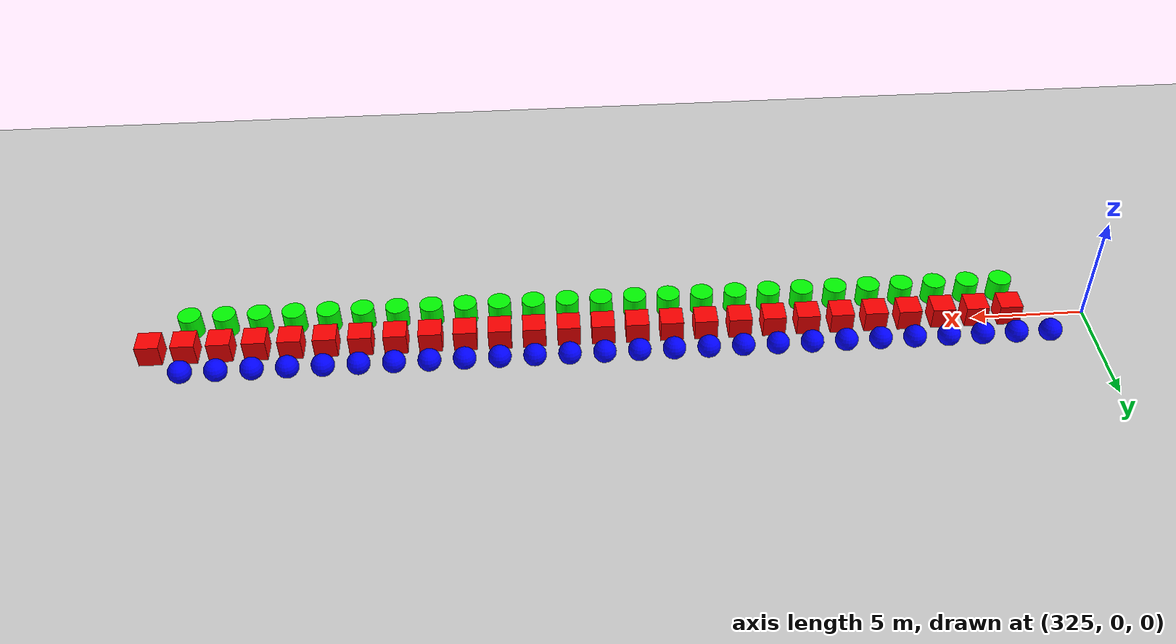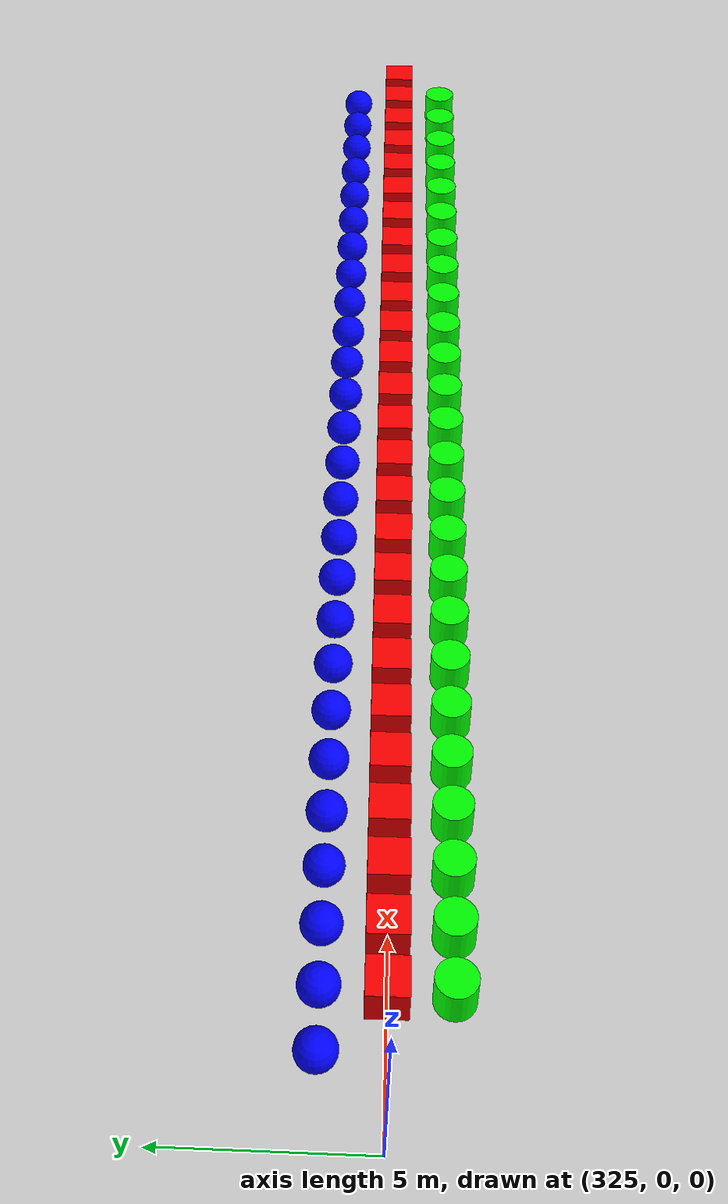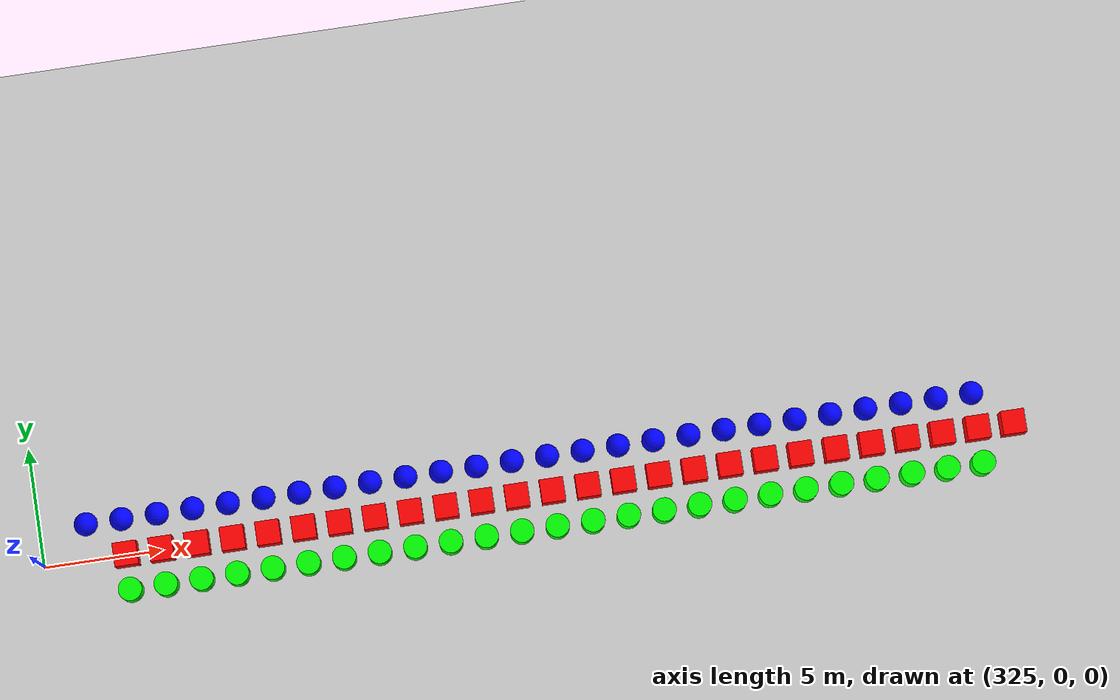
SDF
<sdf version="1.6">
 <world name="shapes">
  <model name="ground_plane">
   <static>true</static>
   <link name="link">
    <collision name="collision">
     <geometry><plane><normal>0 0 1</normal><size>100 100</size></plane></geometry>
    </collision>
    <visual name="visual">
     <geometry><plane><normal>0 0 1</normal><size>100 100</size></plane></geometry>
     <material>
      <ambient>0.8 0.8 0.8 1</ambient>
      <diffuse>0.8 0.8 0.8 1</diffuse>
      <specular>0.8 0.8 0.8 1</specular>
     </material>
    </visual>
   </link>
  </model>
  <model name="sphere_718">
   <static>false</static>
   <pose>327.0 1.5 0.5 0 0 0</pose>
   <link name="sphere_link">
    <inertial>
     <inertia><ixx>3</ixx><ixy>0</ixy><ixz>0</ixz><iyy>3</iyy><iyz>0</iyz><izz>3</izz></inertia>
     <mass>3.0</mass>
    </inertial>
    <collision name="sphere_collision"><geometry><sphere><radius>0.5</radius></sphere></geometry></collision>
    <visual name="sphere_visual">
     <geometry><sphere><radius>0.5</radius></sphere></geometry>
     <material><ambient>0 0 1 1</ambient><diffuse>0 0 1 1</diffuse><specular>0 0 1 1</specular></material>
    </visual>
   </link>
  </model>
  <model name="box_719">
   <static>false</static>
   <pose>328.5 0 0.5 0 0 0</pose>
   <link name="box_link">
    <inertial>
     <inertia><ixx>1</ixx><ixy>0</ixy><ixz>0</ixz><iyy>1</iyy><iyz>0</iyz><izz>1</izz></inertia>
     <mass>1.0</mass>
    </inertial>
    <collision name="box_collision"><geometry><box><size>1 1 1</size></box></geometry></collision>
    <visual name="box_visual">
     <geometry><box><size>1 1 1</size></box></geometry>
     <material><ambient>1 0 0 1</ambient><diffuse>1 0 0 1</diffuse><specular>1 0 0 1</specular></material>
    </visual>
   </link>
  </model>
  <model name="cylinder_719">
   <static>false</static>
   <pose>328.5 -1.5 0.5 0 0 0</pose>
   <link name="cylinder_link">
    <inertial>
     <inertia><ixx>2</ixx><ixy>0</ixy><ixz>0</ixz><iyy>2</iyy><iyz>0</iyz><izz>2</izz></inertia>
     <mass>2.0</mass>
    </inertial>
    <collision name="cylinder_collision">
     <geometry><cylinder><radius>0.5</radius><length>1.0</length></cylinder></geometry>
    </collision>
    <visual name="cylinder_visual">
     <geometry><cylinder><radius>0.5</radius><length>1.0</length></cylinder></geometry>
     <material><ambient>0 1 0 1</ambient><diffuse>0 1 0 1</diffuse><specular>0 1 0 1</specular></material>
    </visual>
   </link>
  </model>
  <model name="sphere_719">
   <static>false</static>
   <pose>328.5 1.5 0.5 0 0 0</pose>
   <link name="sphere_link">
    <inertial>
     <inertia><ixx>3</ixx><ixy>0</ixy><ixz>0</ixz><iyy>3</iyy><iyz>0</iyz><izz>3</izz></inertia>
     <mass>3.0</mass>
    </inertial>
    <collision name="sphere_collision"><geometry><sphere><radius>0.5</radius></sphere></geometry></collision>
    <visual name="sphere_visual">
     <geometry><sphere><radius>0.5</radius></sphere></geometry>
     <material><ambient>0 0 1 1</ambient><diffuse>0 0 1 1</diffuse><specular>0 0 1 1</specular></material>
    </visual>
   </link>
  </model>
  <model name="box_720">
   <static>false</static>
   <pose>330.0 0 0.5 0 0 0</pose>
   <link name="box_link">
    <inertial>
     <inertia><ixx>1</ixx><ixy>0</ixy><ixz>0</ixz><iyy>1</iyy><iyz>0</iyz><izz>1</izz></inertia>
     <mass>1.0</mass>
    </inertial>
    <collision name="box_collision"><geometry><box><size>1 1 1</size></box></geometry></collision>
    <visual name="box_visual">
     <geometry><box><size>1 1 1</size></box></geometry>
     <material><ambient>1 0 0 1</ambient><diffuse>1 0 0 1</diffuse><specular>1 0 0 1</specular></material>
    </visual>
   </link>
  </model>
  <model name="cylinder_720">
   <static>false</static>
   <pose>330.0 -1.5 0.5 0 0 0</pose>
   <link name="cylinder_link">
    <inertial>
     <inertia><ixx>2</ixx><ixy>0</ixy><ixz>0</ixz><iyy>2</iyy><iyz>0</iyz><izz>2</izz></inertia>
     <mass>2.0</mass>
    </inertial>
    <collision name="cylinder_collision">
     <geometry><cylinder><radius>0.5</radius><length>1.0</length></cylinder></geometry>
    </collision>
    <visual name="cylinder_visual">
     <geometry><cylinder><radius>0.5</radius><length>1.0</length></cylinder></geometry>
     <material><ambient>0 1 0 1</ambient><diffuse>0 1 0 1</diffuse><specular>0 1 0 1</specular></material>
    </visual>
   </link>
  </model>
  <model name="sphere_720">
   <static>false</static>
   <pose>330.0 1.5 0.5 0 0 0</pose>
   <link name="sphere_link">
    <inertial>
     <inertia><ixx>3</ixx><ixy>0</ixy><ixz>0</ixz><iyy>3</iyy><iyz>0</iyz><izz>3</izz></inertia>
     <mass>3.0</mass>
    </inertial>
    <collision name="sphere_collision"><geometry><sphere><radius>0.5</radius></sphere></geometry></collision>
    <visual name="sphere_visual">
     <geometry><sphere><radius>0.5</radius></sphere></geometry>
     <material><ambient>0 0 1 1</ambient><diffuse>0 0 1 1</diffuse><specular>0 0 1 1</specular></material>
    </visual>
   </link>
  </model>
  <model name="box_721">
   <static>false</static>
   <pose>331.5 0 0.5 0 0 0</pose>
   <link name="box_link">
    <inertial>
     <inertia><ixx>1</ixx><ixy>0</ixy><ixz>0</ixz><iyy>1</iyy><iyz>0</iyz><izz>1</izz></inertia>
     <mass>1.0</mass>
    </inertial>
    <collision name="box_collision"><geometry><box><size>1 1 1</size></box></geometry></collision>
    <visual name="box_visual">
     <geometry><box><size>1 1 1</size></box></geometry>
     <material><ambient>1 0 0 1</ambient><diffuse>1 0 0 1</diffuse><specular>1 0 0 1</specular></material>
    </visual>
   </link>
  </model>
  <model name="cylinder_721">
   <static>false</static>
   <pose>331.5 -1.5 0.5 0 0 0</pose>
   <link name="cylinder_link">
    <inertial>
     <inertia><ixx>2</ixx><ixy>0</ixy><ixz>0</ixz><iyy>2</iyy><iyz>0</iyz><izz>2</izz></inertia>
     <mass>2.0</mass>
    </inertial>
    <collision name="cylinder_collision">
     <geometry><cylinder><radius>0.5</radius><length>1.0</length></cylinder></geometry>
    </collision>
    <visual name="cylinder_visual">
     <geometry><cylinder><radius>0.5</radius><length>1.0</length></cylinder></geometry>
     <material><ambient>0 1 0 1</ambient><diffuse>0 1 0 1</diffuse><specular>0 1 0 1</specular></material>
    </visual>
   </link>
  </model>
  <model name="sphere_721">
   <static>false</static>
   <pose>331.5 1.5 0.5 0 0 0</pose>
   <link name="sphere_link">
    <inertial>
     <inertia><ixx>3</ixx><ixy>0</ixy><ixz>0</ixz><iyy>3</iyy><iyz>0</iyz><izz>3</izz></inertia>
     <mass>3.0</mass>
    </inertial>
    <collision name="sphere_collision"><geometry><sphere><radius>0.5</radius></sphere></geometry></collision>
    <visual name="sphere_visual">
     <geometry><sphere><radius>0.5</radius></sphere></geometry>
     <material><ambient>0 0 1 1</ambient><diffuse>0 0 1 1</diffuse><specular>0 0 1 1</specular></material>
    </visual>
   </link>
  </model>
  <model name="box_722">
   <static>false</static>
   <pose>333.0 0 0.5 0 0 0</pose>
   <link name="box_link">
    <inertial>
     <inertia><ixx>1</ixx><ixy>0</ixy><ixz>0</ixz><iyy>1</iyy><iyz>0</iyz><izz>1</izz></inertia>
     <mass>1.0</mass>
    </inertial>
    <collision name="box_collision"><geometry><box><size>1 1 1</size></box></geometry></collision>
    <visual name="box_visual">
     <geometry><box><size>1 1 1</size></box></geometry>
     <material><ambient>1 0 0 1</ambient><diffuse>1 0 0 1</diffuse><specular>1 0 0 1</specular></material>
    </visual>
   </link>
  </model>
  <model name="cylinder_722">
   <static>false</static>
   <pose>333.0 -1.5 0.5 0 0 0</pose>
   <link name="cylinder_link">
    <inertial>
     <inertia><ixx>2</ixx><ixy>0</ixy><ixz>0</ixz><iyy>2</iyy><iyz>0</iyz><izz>2</izz></inertia>
     <mass>2.0</mass>
    </inertial>
    <collision name="cylinder_collision">
     <geometry><cylinder><radius>0.5</radius><length>1.0</length></cylinder></geometry>
    </collision>
    <visual name="cylinder_visual">
     <geometry><cylinder><radius>0.5</radius><length>1.0</length></cylinder></geometry>
     <material><ambient>0 1 0 1</ambient><diffuse>0 1 0 1</diffuse><specular>0 1 0 1</specular></material>
    </visual>
   </link>
  </model>
  <model name="sphere_722">
   <static>false</static>
   <pose>333.0 1.5 0.5 0 0 0</pose>
   <link name="sphere_link">
    <inertial>
     <inertia><ixx>3</ixx><ixy>0</ixy><ixz>0</ixz><iyy>3</iyy><iyz>0</iyz><izz>3</izz></inertia>
     <mass>3.0</mass>
    </inertial>
    <collision name="sphere_collision"><geometry><sphere><radius>0.5</radius></sphere></geometry></collision>
    <visual name="sphere_visual">
     <geometry><sphere><radius>0.5</radius></sphere></geometry>
     <material><ambient>0 0 1 1</ambient><diffuse>0 0 1 1</diffuse><specular>0 0 1 1</specular></material>
    </visual>
   </link>
  </model>
  <model name="box_723">
   <static>false</static>
   <pose>334.5 0 0.5 0 0 0</pose>
   <link name="box_link">
    <inertial>
     <inertia><ixx>1</ixx><ixy>0</ixy><ixz>0</ixz><iyy>1</iyy><iyz>0</iyz><izz>1</izz></inertia>
     <mass>1.0</mass>
    </inertial>
    <collision name="box_collision"><geometry><box><size>1 1 1</size></box></geometry></collision>
    <visual name="box_visual">
     <geometry><box><size>1 1 1</size></box></geometry>
     <material><ambient>1 0 0 1</ambient><diffuse>1 0 0 1</diffuse><specular>1 0 0 1</specular></material>
    </visual>
   </link>
  </model>
  <model name="cylinder_723">
   <static>false</static>
   <pose>334.5 -1.5 0.5 0 0 0</pose>
   <link name="cylinder_link">
    <inertial>
     <inertia><ixx>2</ixx><ixy>0</ixy><ixz>0</ixz><iyy>2</iyy><iyz>0</iyz><izz>2</izz></inertia>
     <mass>2.0</mass>
    </inertial>
    <collision name="cylinder_collision">
     <geometry><cylinder><radius>0.5</radius><length>1.0</length></cylinder></geometry>
    </collision>
    <visual name="cylinder_visual">
     <geometry><cylinder><radius>0.5</radius><length>1.0</length></cylinder></geometry>
     <material><ambient>0 1 0 1</ambient><diffuse>0 1 0 1</diffuse><specular>0 1 0 1</specular></material>
    </visual>
   </link>
  </model>
  <model name="sphere_723">
   <static>false</static>
   <pose>334.5 1.5 0.5 0 0 0</pose>
   <link name="sphere_link">
    <inertial>
     <inertia><ixx>3</ixx><ixy>0</ixy><ixz>0</ixz><iyy>3</iyy><iyz>0</iyz><izz>3</izz></inertia>
     <mass>3.0</mass>
    </inertial>
    <collision name="sphere_collision"><geometry><sphere><radius>0.5</radius></sphere></geometry></collision>
    <visual name="sphere_visual">
     <geometry><sphere><radius>0.5</radius></sphere></geometry>
     <material><ambient>0 0 1 1</ambient><diffuse>0 0 1 1</diffuse><specular>0 0 1 1</specular></material>
    </visual>
   </link>
  </model>
  <model name="box_724">
   <static>false</static>
   <pose>336.0 0 0.5 0 0 0</pose>
   <link name="box_link">
    <inertial>
     <inertia><ixx>1</ixx><ixy>0</ixy><ixz>0</ixz><iyy>1</iyy><iyz>0</iyz><izz>1</izz></inertia>
     <mass>1.0</mass>
    </inertial>
    <collision name="box_collision"><geometry><box><size>1 1 1</size></box></geometry></collision>
    <visual name="box_visual">
     <geometry><box><size>1 1 1</size></box></geometry>
     <material><ambient>1 0 0 1</ambient><diffuse>1 0 0 1</diffuse><specular>1 0 0 1</specular></material>
    </visual>
   </link>
  </model>
  <model name="cylinder_724">
   <static>false</static>
   <pose>336.0 -1.5 0.5 0 0 0</pose>
   <link name="cylinder_link">
    <inertial>
     <inertia><ixx>2</ixx><ixy>0</ixy><ixz>0</ixz><iyy>2</iyy><iyz>0</iyz><izz>2</izz></inertia>
     <mass>2.0</mass>
    </inertial>
    <collision name="cylinder_collision">
     <geometry><cylinder><radius>0.5</radius><length>1.0</length></cylinder></geometry>
    </collision>
    <visual name="cylinder_visual">
     <geometry><cylinder><radius>0.5</radius><length>1.0</length></cylinder></geometry>
     <material><ambient>0 1 0 1</ambient><diffuse>0 1 0 1</diffuse><specular>0 1 0 1</specular></material>
    </visual>
   </link>
  </model>
  <model name="sphere_724">
   <static>false</static>
   <pose>336.0 1.5 0.5 0 0 0</pose>
   <link name="sphere_link">
    <inertial>
     <inertia><ixx>3</ixx><ixy>0</ixy><ixz>0</ixz><iyy>3</iyy><iyz>0</iyz><izz>3</izz></inertia>
     <mass>3.0</mass>
    </inertial>
    <collision name="sphere_collision"><geometry><sphere><radius>0.5</radius></sphere></geometry></collision>
    <visual name="sphere_visual">
     <geometry><sphere><radius>0.5</radius></sphere></geometry>
     <material><ambient>0 0 1 1</ambient><diffuse>0 0 1 1</diffuse><specular>0 0 1 1</specular></material>
    </visual>
   </link>
  </model>
  <model name="box_725">
   <static>false</static>
   <pose>337.5 0 0.5 0 0 0</pose>
   <link name="box_link">
    <inertial>
     <inertia><ixx>1</ixx><ixy>0</ixy><ixz>0</ixz><iyy>1</iyy><iyz>0</iyz><izz>1</izz></inertia>
     <mass>1.0</mass>
    </inertial>
    <collision name="box_collision"><geometry><box><size>1 1 1</size></box></geometry></collision>
    <visual name="box_visual">
     <geometry><box><size>1 1 1</size></box></geometry>
     <material><ambient>1 0 0 1</ambient><diffuse>1 0 0 1</diffuse><specular>1 0 0 1</specular></material>
    </visual>
   </link>
  </model>
  <model name="cylinder_725">
   <static>false</static>
   <pose>337.5 -1.5 0.5 0 0 0</pose>
   <link name="cylinder_link">
    <inertial>
     <inertia><ixx>2</ixx><ixy>0</ixy><ixz>0</ixz><iyy>2</iyy><iyz>0</iyz><izz>2</izz></inertia>
     <mass>2.0</mass>
    </inertial>
    <collision name="cylinder_collision">
     <geometry><cylinder><radius>0.5</radius><length>1.0</length></cylinder></geometry>
    </collision>
    <visual name="cylinder_visual">
     <geometry><cylinder><radius>0.5</radius><length>1.0</length></cylinder></geometry>
     <material><ambient>0 1 0 1</ambient><diffuse>0 1 0 1</diffuse><specular>0 1 0 1</specular></material>
    </visual>
   </link>
  </model>
  <model name="sphere_725">
   <static>false</static>
   <pose>337.5 1.5 0.5 0 0 0</pose>
   <link name="sphere_link">
    <inertial>
     <inertia><ixx>3</ixx><ixy>0</ixy><ixz>0</ixz><iyy>3</iyy><iyz>0</iyz><izz>3</izz></inertia>
     <mass>3.0</mass>
    </inertial>
    <collision name="sphere_collision"><geometry><sphere><radius>0.5</radius></sphere></geometry></collision>
    <visual name="sphere_visual">
     <geometry><sphere><radius>0.5</radius></sphere></geometry>
     <material><ambient>0 0 1 1</ambient><diffuse>0 0 1 1</diffuse><specular>0 0 1 1</specular></material>
    </visual>
   </link>
  </model>
  <model name="box_726">
   <static>false</static>
   <pose>339.0 0 0.5 0 0 0</pose>
   <link name="box_link">
    <inertial>
     <inertia><ixx>1</ixx><ixy>0</ixy><ixz>0</ixz><iyy>1</iyy><iyz>0</iyz><izz>1</izz></inertia>
     <mass>1.0</mass>
    </inertial>
    <collision name="box_collision"><geometry><box><size>1 1 1</size></box></geometry></collision>
    <visual name="box_visual">
     <geometry><box><size>1 1 1</size></box></geometry>
     <material><ambient>1 0 0 1</ambient><diffuse>1 0 0 1</diffuse><specular>1 0 0 1</specular></material>
    </visual>
   </link>
  </model>
  <model name="cylinder_726">
   <static>false</static>
   <pose>339.0 -1.5 0.5 0 0 0</pose>
   <link name="cylinder_link">
    <inertial>
     <inertia><ixx>2</ixx><ixy>0</ixy><ixz>0</ixz><iyy>2</iyy><iyz>0</iyz><izz>2</izz></inertia>
     <mass>2.0</mass>
    </inertial>
    <collision name="cylinder_collision">
     <geometry><cylinder><radius>0.5</radius><length>1.0</length></cylinder></geometry>
    </collision>
    <visual name="cylinder_visual">
     <geometry><cylinder><radius>0.5</radius><length>1.0</length></cylinder></geometry>
     <material><ambient>0 1 0 1</ambient><diffuse>0 1 0 1</diffuse><specular>0 1 0 1</specular></material>
    </visual>
   </link>
  </model>
  <model name="sphere_726">
   <static>false</static>
   <pose>339.0 1.5 0.5 0 0 0</pose>
   <link name="sphere_link">
    <inertial>
     <inertia><ixx>3</ixx><ixy>0</ixy><ixz>0</ixz><iyy>3</iyy><iyz>0</iyz><izz>3</izz></inertia>
     <mass>3.0</mass>
    </inertial>
    <collision name="sphere_collision"><geometry><sphere><radius>0.5</radius></sphere></geometry></collision>
    <visual name="sphere_visual">
     <geometry><sphere><radius>0.5</radius></sphere></geometry>
     <material><ambient>0 0 1 1</ambient><diffuse>0 0 1 1</diffuse><specular>0 0 1 1</specular></material>
    </visual>
   </link>
  </model>
  <model name="box_727">
   <static>false</static>
   <pose>340.5 0 0.5 0 0 0</pose>
   <link name="box_link">
    <inertial>
     <inertia><ixx>1</ixx><ixy>0</ixy><ixz>0</ixz><iyy>1</iyy><iyz>0</iyz><izz>1</izz></inertia>
     <mass>1.0</mass>
    </inertial>
    <collision name="box_collision"><geometry><box><size>1 1 1</size></box></geometry></collision>
    <visual name="box_visual">
     <geometry><box><size>1 1 1</size></box></geometry>
     <material><ambient>1 0 0 1</ambient><diffuse>1 0 0 1</diffuse><specular>1 0 0 1</specular></material>
    </visual>
   </link>
  </model>
  <model name="cylinder_727">
   <static>false</static>
   <pose>340.5 -1.5 0.5 0 0 0</pose>
   <link name="cylinder_link">
    <inertial>
     <inertia><ixx>2</ixx><ixy>0</ixy><ixz>0</ixz><iyy>2</iyy><iyz>0</iyz><izz>2</izz></inertia>
     <mass>2.0</mass>
    </inertial>
    <collision name="cylinder_collision">
     <geometry><cylinder><radius>0.5</radius><length>1.0</length></cylinder></geometry>
    </collision>
    <visual name="cylinder_visual">
     <geometry><cylinder><radius>0.5</radius><length>1.0</length></cylinder></geometry>
     <material><ambient>0 1 0 1</ambient><diffuse>0 1 0 1</diffuse><specular>0 1 0 1</specular></material>
    </visual>
   </link>
  </model>
  <model name="sphere_727">
   <static>false</static>
   <pose>340.5 1.5 0.5 0 0 0</pose>
   <link name="sphere_link">
    <inertial>
     <inertia><ixx>3</ixx><ixy>0</ixy><ixz>0</ixz><iyy>3</iyy><iyz>0</iyz><izz>3</izz></inertia>
     <mass>3.0</mass>
    </inertial>
    <collision name="sphere_collision"><geometry><sphere><radius>0.5</radius></sphere></geometry></collision>
    <visual name="sphere_visual">
     <geometry><sphere><radius>0.5</radius></sphere></geometry>
     <material><ambient>0 0 1 1</ambient><diffuse>0 0 1 1</diffuse><specular>0 0 1 1</specular></material>
    </visual>
   </link>
  </model>
  <model name="box_728">
   <static>false</static>
   <pose>342.0 0 0.5 0 0 0</pose>
   <link name="box_link">
    <inertial>
     <inertia><ixx>1</ixx><ixy>0</ixy><ixz>0</ixz><iyy>1</iyy><iyz>0</iyz><izz>1</izz></inertia>
     <mass>1.0</mass>
    </inertial>
    <collision name="box_collision"><geometry><box><size>1 1 1</size></box></geometry></collision>
    <visual name="box_visual">
     <geometry><box><size>1 1 1</size></box></geometry>
     <material><ambient>1 0 0 1</ambient><diffuse>1 0 0 1</diffuse><specular>1 0 0 1</specular></material>
    </visual>
   </link>
  </model>
  <model name="cylinder_728">
   <static>false</static>
   <pose>342.0 -1.5 0.5 0 0 0</pose>
   <link name="cylinder_link">
    <inertial>
     <inertia><ixx>2</ixx><ixy>0</ixy><ixz>0</ixz><iyy>2</iyy><iyz>0</iyz><izz>2</izz></inertia>
     <mass>2.0</mass>
    </inertial>
    <collision name="cylinder_collision">
     <geometry><cylinder><radius>0.5</radius><length>1.0</length></cylinder></geometry>
    </collision>
    <visual name="cylinder_visual">
     <geometry><cylinder><radius>0.5</radius><length>1.0</length></cylinder></geometry>
     <material><ambient>0 1 0 1</ambient><diffuse>0 1 0 1</diffuse><specular>0 1 0 1</specular></material>
    </visual>
   </link>
  </model>
  <model name="sphere_728">
   <static>false</static>
   <pose>342.0 1.5 0.5 0 0 0</pose>
   <link name="sphere_link">
    <inertial>
     <inertia><ixx>3</ixx><ixy>0</ixy><ixz>0</ixz><iyy>3</iyy><iyz>0</iyz><izz>3</izz></inertia>
     <mass>3.0</mass>
    </inertial>
    <collision name="sphere_collision"><geometry><sphere><radius>0.5</radius></sphere></geometry></collision>
    <visual name="sphere_visual">
     <geometry><sphere><radius>0.5</radius></sphere></geometry>
     <material><ambient>0 0 1 1</ambient><diffuse>0 0 1 1</diffuse><specular>0 0 1 1</specular></material>
    </visual>
   </link>
  </model>
  <model name="box_729">
   <static>false</static>
   <pose>343.5 0 0.5 0 0 0</pose>
   <link name="box_link">
    <inertial>
     <inertia><ixx>1</ixx><ixy>0</ixy><ixz>0</ixz><iyy>1</iyy><iyz>0</iyz><izz>1</izz></inertia>
     <mass>1.0</mass>
    </inertial>
    <collision name="box_collision"><geometry><box><size>1 1 1</size></box></geometry></collision>
    <visual name="box_visual">
     <geometry><box><size>1 1 1</size></box></geometry>
     <material><ambient>1 0 0 1</ambient><diffuse>1 0 0 1</diffuse><specular>1 0 0 1</specular></material>
    </visual>
   </link>
  </model>
  <model name="cylinder_729">
   <static>false</static>
   <pose>343.5 -1.5 0.5 0 0 0</pose>
   <link name="cylinder_link">
    <inertial>
     <inertia><ixx>2</ixx><ixy>0</ixy><ixz>0</ixz><iyy>2</iyy><iyz>0</iyz><izz>2</izz></inertia>
     <mass>2.0</mass>
    </inertial>
    <collision name="cylinder_collision">
     <geometry><cylinder><radius>0.5</radius><length>1.0</length></cylinder></geometry>
    </collision>
    <visual name="cylinder_visual">
     <geometry><cylinder><radius>0.5</radius><length>1.0</length></cylinder></geometry>
     <material><ambient>0 1 0 1</ambient><diffuse>0 1 0 1</diffuse><specular>0 1 0 1</specular></material>
    </visual>
   </link>
  </model>
  <model name="sphere_729">
   <static>false</static>
   <pose>343.5 1.5 0.5 0 0 0</pose>
   <link name="sphere_link">
    <inertial>
     <inertia><ixx>3</ixx><ixy>0</ixy><ixz>0</ixz><iyy>3</iyy><iyz>0</iyz><izz>3</izz></inertia>
     <mass>3.0</mass>
    </inertial>
    <collision name="sphere_collision"><geometry><sphere><radius>0.5</radius></sphere></geometry></collision>
    <visual name="sphere_visual">
     <geometry><sphere><radius>0.5</radius></sphere></geometry>
     <material><ambient>0 0 1 1</ambient><diffuse>0 0 1 1</diffuse><specular>0 0 1 1</specular></material>
    </visual>
   </link>
  </model>
  <model name="box_730">
   <static>false</static>
   <pose>345.0 0 0.5 0 0 0</pose>
   <link name="box_link">
    <inertial>
     <inertia><ixx>1</ixx><ixy>0</ixy><ixz>0</ixz><iyy>1</iyy><iyz>0</iyz><izz>1</izz></inertia>
     <mass>1.0</mass>
    </inertial>
    <collision name="box_collision"><geometry><box><size>1 1 1</size></box></geometry></collision>
    <visual name="box_visual">
     <geometry><box><size>1 1 1</size></box></geometry>
     <material><ambient>1 0 0 1</ambient><diffuse>1 0 0 1</diffuse><specular>1 0 0 1</specular></material>
    </visual>
   </link>
  </model>
  <model name="cylinder_730">
   <static>false</static>
   <pose>345.0 -1.5 0.5 0 0 0</pose>
   <link name="cylinder_link">
    <inertial>
     <inertia><ixx>2</ixx><ixy>0</ixy><ixz>0</ixz><iyy>2</iyy><iyz>0</iyz><izz>2</izz></inertia>
     <mass>2.0</mass>
    </inertial>
    <collision name="cylinder_collision">
     <geometry><cylinder><radius>0.5</radius><length>1.0</length></cylinder></geometry>
    </collision>
    <visual name="cylinder_visual">
     <geometry><cylinder><radius>0.5</radius><length>1.0</length></cylinder></geometry>
     <material><ambient>0 1 0 1</ambient><diffuse>0 1 0 1</diffuse><specular>0 1 0 1</specular></material>
    </visual>
   </link>
  </model>
  <model name="sphere_730">
   <static>false</static>
   <pose>345.0 1.5 0.5 0 0 0</pose>
   <link name="sphere_link">
    <inertial>
     <inertia><ixx>3</ixx><ixy>0</ixy><ixz>0</ixz><iyy>3</iyy><iyz>0</iyz><izz>3</izz></inertia>
     <mass>3.0</mass>
    </inertial>
    <collision name="sphere_collision"><geometry><sphere><radius>0.5</radius></sphere></geometry></collision>
    <visual name="sphere_visual">
     <geometry><sphere><radius>0.5</radius></sphere></geometry>
     <material><ambient>0 0 1 1</ambient><diffuse>0 0 1 1</diffuse><specular>0 0 1 1</specular></material>
    </visual>
   </link>
  </model>
  <model name="box_731">
   <static>false</static>
   <pose>346.5 0 0.5 0 0 0</pose>
   <link name="box_link">
    <inertial>
     <inertia><ixx>1</ixx><ixy>0</ixy><ixz>0</ixz><iyy>1</iyy><iyz>0</iyz><izz>1</izz></inertia>
     <mass>1.0</mass>
    </inertial>
    <collision name="box_collision"><geometry><box><size>1 1 1</size></box></geometry></collision>
    <visual name="box_visual">
     <geometry><box><size>1 1 1</size></box></geometry>
     <material><ambient>1 0 0 1</ambient><diffuse>1 0 0 1</diffuse><specular>1 0 0 1</specular></material>
    </visual>
   </link>
  </model>
  <model name="cylinder_731">
   <static>false</static>
   <pose>346.5 -1.5 0.5 0 0 0</pose>
   <link name="cylinder_link">
    <inertial>
     <inertia><ixx>2</ixx><ixy>0</ixy><ixz>0</ixz><iyy>2</iyy><iyz>0</iyz><izz>2</izz></inertia>
     <mass>2.0</mass>
    </inertial>
    <collision name="cylinder_collision">
     <geometry><cylinder><radius>0.5</radius><length>1.0</length></cylinder></geometry>
    </collision>
    <visual name="cylinder_visual">
     <geometry><cylinder><radius>0.5</radius><length>1.0</length></cylinder></geometry>
     <material><ambient>0 1 0 1</ambient><diffuse>0 1 0 1</diffuse><specular>0 1 0 1</specular></material>
    </visual>
   </link>
  </model>
  <model name="sphere_731">
   <static>false</static>
   <pose>346.5 1.5 0.5 0 0 0</pose>
   <link name="sphere_link">
    <inertial>
     <inertia><ixx>3</ixx><ixy>0</ixy><ixz>0</ixz><iyy>3</iyy><iyz>0</iyz><izz>3</izz></inertia>
     <mass>3.0</mass>
    </inertial>
    <collision name="sphere_collision"><geometry><sphere><radius>0.5</radius></sphere></geometry></collision>
    <visual name="sphere_visual">
     <geometry><sphere><radius>0.5</radius></sphere></geometry>
     <material><ambient>0 0 1 1</ambient><diffuse>0 0 1 1</diffuse><specular>0 0 1 1</specular></material>
    </visual>
   </link>
  </model>
  <model name="box_732">
   <static>false</static>
   <pose>348.0 0 0.5 0 0 0</pose>
   <link name="box_link">
    <inertial>
     <inertia><ixx>1</ixx><ixy>0</ixy><ixz>0</ixz><iyy>1</iyy><iyz>0</iyz><izz>1</izz></inertia>
     <mass>1.0</mass>
    </inertial>
    <collision name="box_collision"><geometry><box><size>1 1 1</size></box></geometry></collision>
    <visual name="box_visual">
     <geometry><box><size>1 1 1</size></box></geometry>
     <material><ambient>1 0 0 1</ambient><diffuse>1 0 0 1</diffuse><specular>1 0 0 1</specular></material>
    </visual>
   </link>
  </model>
  <model name="cylinder_732">
   <static>false</static>
   <pose>348.0 -1.5 0.5 0 0 0</pose>
   <link name="cylinder_link">
    <inertial>
     <inertia><ixx>2</ixx><ixy>0</ixy><ixz>0</ixz><iyy>2</iyy><iyz>0</iyz><izz>2</izz></inertia>
     <mass>2.0</mass>
    </inertial>
    <collision name="cylinder_collision">
     <geometry><cylinder><radius>0.5</radius><length>1.0</length></cylinder></geometry>
    </collision>
    <visual name="cylinder_visual">
     <geometry><cylinder><radius>0.5</radius><length>1.0</length></cylinder></geometry>
     <material><ambient>0 1 0 1</ambient><diffuse>0 1 0 1</diffuse><specular>0 1 0 1</specular></material>
    </visual>
   </link>
  </model>
  <model name="sphere_732">
   <static>false</static>
   <pose>348.0 1.5 0.5 0 0 0</pose>
   <link name="sphere_link">
    <inertial>
     <inertia><ixx>3</ixx><ixy>0</ixy><ixz>0</ixz><iyy>3</iyy><iyz>0</iyz><izz>3</izz></inertia>
     <mass>3.0</mass>
    </inertial>
    <collision name="sphere_collision"><geometry><sphere><radius>0.5</radius></sphere></geometry></collision>
    <visual name="sphere_visual">
     <geometry><sphere><radius>0.5</radius></sphere></geometry>
     <material><ambient>0 0 1 1</ambient><diffuse>0 0 1 1</diffuse><specular>0 0 1 1</specular></material>
    </visual>
   </link>
  </model>
  <model name="box_733">
   <static>false</static>
   <pose>349.5 0 0.5 0 0 0</pose>
   <link name="box_link">
    <inertial>
     <inertia><ixx>1</ixx><ixy>0</ixy><ixz>0</ixz><iyy>1</iyy><iyz>0</iyz><izz>1</izz></inertia>
     <mass>1.0</mass>
    </inertial>
    <collision name="box_collision"><geometry><box><size>1 1 1</size></box></geometry></collision>
    <visual name="box_visual">
     <geometry><box><size>1 1 1</size></box></geometry>
     <material><ambient>1 0 0 1</ambient><diffuse>1 0 0 1</diffuse><specular>1 0 0 1</specular></material>
    </visual>
   </link>
  </model>
  <model name="cylinder_733">
   <static>false</static>
   <pose>349.5 -1.5 0.5 0 0 0</pose>
   <link name="cylinder_link">
    <inertial>
     <inertia><ixx>2</ixx><ixy>0</ixy><ixz>0</ixz><iyy>2</iyy><iyz>0</iyz><izz>2</izz></inertia>
     <mass>2.0</mass>
    </inertial>
    <collision name="cylinder_collision">
     <geometry><cylinder><radius>0.5</radius><length>1.0</length></cylinder></geometry>
    </collision>
    <visual name="cylinder_visual">
     <geometry><cylinder><radius>0.5</radius><length>1.0</length></cylinder></geometry>
     <material><ambient>0 1 0 1</ambient><diffuse>0 1 0 1</diffuse><specular>0 1 0 1</specular></material>
    </visual>
   </link>
  </model>
  <model name="sphere_733">
   <static>false</static>
   <pose>349.5 1.5 0.5 0 0 0</pose>
   <link name="sphere_link">
    <inertial>
     <inertia><ixx>3</ixx><ixy>0</ixy><ixz>0</ixz><iyy>3</iyy><iyz>0</iyz><izz>3</izz></inertia>
     <mass>3.0</mass>
    </inertial>
    <collision name="sphere_collision"><geometry><sphere><radius>0.5</radius></sphere></geometry></collision>
    <visual name="sphere_visual">
     <geometry><sphere><radius>0.5</radius></sphere></geometry>
     <material><ambient>0 0 1 1</ambient><diffuse>0 0 1 1</diffuse><specular>0 0 1 1</specular></material>
    </visual>
   </link>
  </model>
  <model name="box_734">
   <static>false</static>
   <pose>351.0 0 0.5 0 0 0</pose>
   <link name="box_link">
    <inertial>
     <inertia><ixx>1</ixx><ixy>0</ixy><ixz>0</ixz><iyy>1</iyy><iyz>0</iyz><izz>1</izz></inertia>
     <mass>1.0</mass>
    </inertial>
    <collision name="box_collision"><geometry><box><size>1 1 1</size></box></geometry></collision>
    <visual name="box_visual">
     <geometry><box><size>1 1 1</size></box></geometry>
     <material><ambient>1 0 0 1</ambient><diffuse>1 0 0 1</diffuse><specular>1 0 0 1</specular></material>
    </visual>
   </link>
  </model>
  <model name="cylinder_734">
   <static>false</static>
   <pose>351.0 -1.5 0.5 0 0 0</pose>
   <link name="cylinder_link">
    <inertial>
     <inertia><ixx>2</ixx><ixy>0</ixy><ixz>0</ixz><iyy>2</iyy><iyz>0</iyz><izz>2</izz></inertia>
     <mass>2.0</mass>
    </inertial>
    <collision name="cylinder_collision">
     <geometry><cylinder><radius>0.5</radius><length>1.0</length></cylinder></geometry>
    </collision>
    <visual name="cylinder_visual">
     <geometry><cylinder><radius>0.5</radius><length>1.0</length></cylinder></geometry>
     <material><ambient>0 1 0 1</ambient><diffuse>0 1 0 1</diffuse><specular>0 1 0 1</specular></material>
    </visual>
   </link>
  </model>
  <model name="sphere_734">
   <static>false</static>
   <pose>351.0 1.5 0.5 0 0 0</pose>
   <link name="sphere_link">
    <inertial>
     <inertia><ixx>3</ixx><ixy>0</ixy><ixz>0</ixz><iyy>3</iyy><iyz>0</iyz><izz>3</izz></inertia>
     <mass>3.0</mass>
    </inertial>
    <collision name="sphere_collision"><geometry><sphere><radius>0.5</radius></sphere></geometry></collision>
    <visual name="sphere_visual">
     <geometry><sphere><radius>0.5</radius></sphere></geometry>
     <material><ambient>0 0 1 1</ambient><diffuse>0 0 1 1</diffuse><specular>0 0 1 1</specular></material>
    </visual>
   </link>
  </model>
  <model name="box_735">
   <static>false</static>
   <pose>352.5 0 0.5 0 0 0</pose>
   <link name="box_link">
    <inertial>
     <inertia><ixx>1</ixx><ixy>0</ixy><ixz>0</ixz><iyy>1</iyy><iyz>0</iyz><izz>1</izz></inertia>
     <mass>1.0</mass>
    </inertial>
    <collision name="box_collision"><geometry><box><size>1 1 1</size></box></geometry></collision>
    <visual name="box_visual">
     <geometry><box><size>1 1 1</size></box></geometry>
     <material><ambient>1 0 0 1</ambient><diffuse>1 0 0 1</diffuse><specular>1 0 0 1</specular></material>
    </visual>
   </link>
  </model>
  <model name="cylinder_735">
   <static>false</static>
   <pose>352.5 -1.5 0.5 0 0 0</pose>
   <link name="cylinder_link">
    <inertial>
     <inertia><ixx>2</ixx><ixy>0</ixy><ixz>0</ixz><iyy>2</iyy><iyz>0</iyz><izz>2</izz></inertia>
     <mass>2.0</mass>
    </inertial>
    <collision name="cylinder_collision">
     <geometry><cylinder><radius>0.5</radius><length>1.0</length></cylinder></geometry>
    </collision>
    <visual name="cylinder_visual">
     <geometry><cylinder><radius>0.5</radius><length>1.0</length></cylinder></geometry>
     <material><ambient>0 1 0 1</ambient><diffuse>0 1 0 1</diffuse><specular>0 1 0 1</specular></material>
    </visual>
   </link>
  </model>
  <model name="sphere_735">
   <static>false</static>
   <pose>352.5 1.5 0.5 0 0 0</pose>
   <link name="sphere_link">
    <inertial>
     <inertia><ixx>3</ixx><ixy>0</ixy><ixz>0</ixz><iyy>3</iyy><iyz>0</iyz><izz>3</izz></inertia>
     <mass>3.0</mass>
    </inertial>
    <collision name="sphere_collision"><geometry><sphere><radius>0.5</radius></sphere></geometry></collision>
    <visual name="sphere_visual">
     <geometry><sphere><radius>0.5</radius></sphere></geometry>
     <material><ambient>0 0 1 1</ambient><diffuse>0 0 1 1</diffuse><specular>0 0 1 1</specular></material>
    </visual>
   </link>
  </model>
  <model name="box_736">
   <static>false</static>
   <pose>354.0 0 0.5 0 0 0</pose>
   <link name="box_link">
    <inertial>
     <inertia><ixx>1</ixx><ixy>0</ixy><ixz>0</ixz><iyy>1</iyy><iyz>0</iyz><izz>1</izz></inertia>
     <mass>1.0</mass>
    </inertial>
    <collision name="box_collision"><geometry><box><size>1 1 1</size></box></geometry></collision>
    <visual name="box_visual">
     <geometry><box><size>1 1 1</size></box></geometry>
     <material><ambient>1 0 0 1</ambient><diffuse>1 0 0 1</diffuse><specular>1 0 0 1</specular></material>
    </visual>
   </link>
  </model>
  <model name="cylinder_736">
   <static>false</static>
   <pose>354.0 -1.5 0.5 0 0 0</pose>
   <link name="cylinder_link">
    <inertial>
     <inertia><ixx>2</ixx><ixy>0</ixy><ixz>0</ixz><iyy>2</iyy><iyz>0</iyz><izz>2</izz></inertia>
     <mass>2.0</mass>
    </inertial>
    <collision name="cylinder_collision">
     <geometry><cylinder><radius>0.5</radius><length>1.0</length></cylinder></geometry>
    </collision>
    <visual name="cylinder_visual">
     <geometry><cylinder><radius>0.5</radius><length>1.0</length></cylinder></geometry>
     <material><ambient>0 1 0 1</ambient><diffuse>0 1 0 1</diffuse><specular>0 1 0 1</specular></material>
    </visual>
   </link>
  </model>
  <model name="sphere_736">
   <static>false</static>
   <pose>354.0 1.5 0.5 0 0 0</pose>
   <link name="sphere_link">
    <inertial>
     <inertia><ixx>3</ixx><ixy>0</ixy><ixz>0</ixz><iyy>3</iyy><iyz>0</iyz><izz>3</izz></inertia>
     <mass>3.0</mass>
    </inertial>
    <collision name="sphere_collision"><geometry><sphere><radius>0.5</radius></sphere></geometry></collision>
    <visual name="sphere_visual">
     <geometry><sphere><radius>0.5</radius></sphere></geometry>
     <material><ambient>0 0 1 1</ambient><diffuse>0 0 1 1</diffuse><specular>0 0 1 1</specular></material>
    </visual>
   </link>
  </model>
  <model name="box_737">
   <static>false</static>
   <pose>355.5 0 0.5 0 0 0</pose>
   <link name="box_link">
    <inertial>
     <inertia><ixx>1</ixx><ixy>0</ixy><ixz>0</ixz><iyy>1</iyy><iyz>0</iyz><izz>1</izz></inertia>
     <mass>1.0</mass>
    </inertial>
    <collision name="box_collision"><geometry><box><size>1 1 1</size></box></geometry></collision>
    <visual name="box_visual">
     <geometry><box><size>1 1 1</size></box></geometry>
     <material><ambient>1 0 0 1</ambient><diffuse>1 0 0 1</diffuse><specular>1 0 0 1</specular></material>
    </visual>
   </link>
  </model>
  <model name="cylinder_737">
   <static>false</static>
   <pose>355.5 -1.5 0.5 0 0 0</pose>
   <link name="cylinder_link">
    <inertial>
     <inertia><ixx>2</ixx><ixy>0</ixy><ixz>0</ixz><iyy>2</iyy><iyz>0</iyz><izz>2</izz></inertia>
     <mass>2.0</mass>
    </inertial>
    <collision name="cylinder_collision">
     <geometry><cylinder><radius>0.5</radius><length>1.0</length></cylinder></geometry>
    </collision>
    <visual name="cylinder_visual">
     <geometry><cylinder><radius>0.5</radius><length>1.0</length></cylinder></geometry>
     <material><ambient>0 1 0 1</ambient><diffuse>0 1 0 1</diffuse><specular>0 1 0 1</specular></material>
    </visual>
   </link>
  </model>
  <model name="sphere_737">
   <static>false</static>
   <pose>355.5 1.5 0.5 0 0 0</pose>
   <link name="sphere_link">
    <inertial>
     <inertia><ixx>3</ixx><ixy>0</ixy><ixz>0</ixz><iyy>3</iyy><iyz>0</iyz><izz>3</izz></inertia>
     <mass>3.0</mass>
    </inertial>
    <collision name="sphere_collision"><geometry><sphere><radius>0.5</radius></sphere></geometry></collision>
    <visual name="sphere_visual">
     <geometry><sphere><radius>0.5</radius></sphere></geometry>
     <material><ambient>0 0 1 1</ambient><diffuse>0 0 1 1</diffuse><specular>0 0 1 1</specular></material>
    </visual>
   </link>
  </model>
  <model name="box_738">
   <static>false</static>
   <pose>357.0 0 0.5 0 0 0</pose>
   <link name="box_link">
    <inertial>
     <inertia><ixx>1</ixx><ixy>0</ixy><ixz>0</ixz><iyy>1</iyy><iyz>0</iyz><izz>1</izz></inertia>
     <mass>1.0</mass>
    </inertial>
    <collision name="box_collision"><geometry><box><size>1 1 1</size></box></geometry></collision>
    <visual name="box_visual">
     <geometry><box><size>1 1 1</size></box></geometry>
     <material><ambient>1 0 0 1</ambient><diffuse>1 0 0 1</diffuse><specular>1 0 0 1</specular></material>
    </visual>
   </link>
  </model>
  <model name="cylinder_738">
   <static>false</static>
   <pose>357.0 -1.5 0.5 0 0 0</pose>
   <link name="cylinder_link">
    <inertial>
     <inertia><ixx>2</ixx><ixy>0</ixy><ixz>0</ixz><iyy>2</iyy><iyz>0</iyz><izz>2</izz></inertia>
     <mass>2.0</mass>
    </inertial>
    <collision name="cylinder_collision">
     <geometry><cylinder><radius>0.5</radius><length>1.0</length></cylinder></geometry>
    </collision>
    <visual name="cylinder_visual">
     <geometry><cylinder><radius>0.5</radius><length>1.0</length></cylinder></geometry>
     <material><ambient>0 1 0 1</ambient><diffuse>0 1 0 1</diffuse><specular>0 1 0 1</specular></material>
    </visual>
   </link>
  </model>
  <model name="sphere_738">
   <static>false</static>
   <pose>357.0 1.5 0.5 0 0 0</pose>
   <link name="sphere_link">
    <inertial>
     <inertia><ixx>3</ixx><ixy>0</ixy><ixz>0</ixz><iyy>3</iyy><iyz>0</iyz><izz>3</izz></inertia>
     <mass>3.0</mass>
    </inertial>
    <collision name="sphere_collision"><geometry><sphere><radius>0.5</radius></sphere></geometry></collision>
    <visual name="sphere_visual">
     <geometry><sphere><radius>0.5</radius></sphere></geometry>
     <material><ambient>0 0 1 1</ambient><diffuse>0 0 1 1</diffuse><specular>0 0 1 1</specular></material>
    </visual>
   </link>
  </model>
  <model name="box_739">
   <static>false</static>
   <pose>358.5 0 0.5 0 0 0</pose>
   <link name="box_link">
    <inertial>
     <inertia><ixx>1</ixx><ixy>0</ixy><ixz>0</ixz><iyy>1</iyy><iyz>0</iyz><izz>1</izz></inertia>
     <mass>1.0</mass>
    </inertial>
    <collision name="box_collision"><geometry><box><size>1 1 1</size></box></geometry></collision>
    <visual name="box_visual">
     <geometry><box><size>1 1 1</size></box></geometry>
     <material><ambient>1 0 0 1</ambient><diffuse>1 0 0 1</diffuse><specular>1 0 0 1</specular></material>
    </visual>
   </link>
  </model>
  <model name="cylinder_739">
   <static>false</static>
   <pose>358.5 -1.5 0.5 0 0 0</pose>
   <link name="cylinder_link">
    <inertial>
     <inertia><ixx>2</ixx><ixy>0</ixy><ixz>0</ixz><iyy>2</iyy><iyz>0</iyz><izz>2</izz></inertia>
     <mass>2.0</mass>
    </inertial>
    <collision name="cylinder_collision">
     <geometry><cylinder><radius>0.5</radius><length>1.0</length></cylinder></geometry>
    </collision>
    <visual name="cylinder_visual">
     <geometry><cylinder><radius>0.5</radius><length>1.0</length></cylinder></geometry>
     <material><ambient>0 1 0 1</ambient><diffuse>0 1 0 1</diffuse><specular>0 1 0 1</specular></material>
    </visual>
   </link>
  </model>
  <model name="sphere_739">
   <static>false</static>
   <pose>358.5 1.5 0.5 0 0 0</pose>
   <link name="sphere_link">
    <inertial>
     <inertia><ixx>3</ixx><ixy>0</ixy><ixz>0</ixz><iyy>3</iyy><iyz>0</iyz><izz>3</izz></inertia>
     <mass>3.0</mass>
    </inertial>
    <collision name="sphere_collision"><geometry><sphere><radius>0.5</radius></sphere></geometry></collision>
    <visual name="sphere_visual">
     <geometry><sphere><radius>0.5</radius></sphere></geometry>
     <material><ambient>0 0 1 1</ambient><diffuse>0 0 1 1</diffuse><specular>0 0 1 1</specular></material>
    </visual>
   </link>
  </model>
  <model name="box_740">
   <static>false</static>
   <pose>360.0 0 0.5 0 0 0</pose>
   <link name="box_link">
    <inertial>
     <inertia><ixx>1</ixx><ixy>0</ixy><ixz>0</ixz><iyy>1</iyy><iyz>0</iyz><izz>1</izz></inertia>
     <mass>1.0</mass>
    </inertial>
    <collision name="box_collision"><geometry><box><size>1 1 1</size></box></geometry></collision>
    <visual name="box_visual">
     <geometry><box><size>1 1 1</size></box></geometry>
     <material><ambient>1 0 0 1</ambient><diffuse>1 0 0 1</diffuse><specular>1 0 0 1</specular></material>
    </visual>
   </link>
  </model>
  <model name="cylinder_740">
   <static>false</static>
   <pose>360.0 -1.5 0.5 0 0 0</pose>
   <link name="cylinder_link">
    <inertial>
     <inertia><ixx>2</ixx><ixy>0</ixy><ixz>0</ixz><iyy>2</iyy><iyz>0</iyz><izz>2</izz></inertia>
     <mass>2.0</mass>
    </inertial>
    <collision name="cylinder_collision">
     <geometry><cylinder><radius>0.5</radius><length>1.0</length></cylinder></geometry>
    </collision>
    <visual name="cylinder_visual">
     <geometry><cylinder><radius>0.5</radius><length>1.0</length></cylinder></geometry>
     <material><ambient>0 1 0 1</ambient><diffuse>0 1 0 1</diffuse><specular>0 1 0 1</specular></material>
    </visual>
   </link>
  </model>
  <model name="sphere_740">
   <static>false</static>
   <pose>360.0 1.5 0.5 0 0 0</pose>
   <link name="sphere_link">
    <inertial>
     <inertia><ixx>3</ixx><ixy>0</ixy><ixz>0</ixz><iyy>3</iyy><iyz>0</iyz><izz>3</izz></inertia>
     <mass>3.0</mass>
    </inertial>
    <collision name="sphere_collision"><geometry><sphere><radius>0.5</radius></sphere></geometry></collision>
    <visual name="sphere_visual">
     <geometry><sphere><radius>0.5</radius></sphere></geometry>
     <material><ambient>0 0 1 1</ambient><diffuse>0 0 1 1</diffuse><specular>0 0 1 1</specular></material>
    </visual>
   </link>
  </model>
  <model name="box_741">
   <static>false</static>
   <pose>361.5 0 0.5 0 0 0</pose>
   <link name="box_link">
    <inertial>
     <inertia><ixx>1</ixx><ixy>0</ixy><ixz>0</ixz><iyy>1</iyy><iyz>0</iyz><izz>1</izz></inertia>
     <mass>1.0</mass>
    </inertial>
    <collision name="box_collision"><geometry><box><size>1 1 1</size></box></geometry></collision>
    <visual name="box_visual">
     <geometry><box><size>1 1 1</size></box></geometry>
     <material><ambient>1 0 0 1</ambient><diffuse>1 0 0 1</diffuse><specular>1 0 0 1</specular></material>
    </visual>
   </link>
  </model>
  <model name="cylinder_741">
   <static>false</static>
   <pose>361.5 -1.5 0.5 0 0 0</pose>
   <link name="cylinder_link">
    <inertial>
     <inertia><ixx>2</ixx><ixy>0</ixy><ixz>0</ixz><iyy>2</iyy><iyz>0</iyz><izz>2</izz></inertia>
     <mass>2.0</mass>
    </inertial>
    <collision name="cylinder_collision">
     <geometry><cylinder><radius>0.5</radius><length>1.0</length></cylinder></geometry>
    </collision>
    <visual name="cylinder_visual">
     <geometry><cylinder><radius>0.5</radius><length>1.0</length></cylinder></geometry>
     <material><ambient>0 1 0 1</ambient><diffuse>0 1 0 1</diffuse><specular>0 1 0 1</specular></material>
    </visual>
   </link>
  </model>
  <model name="sphere_741">
   <static>false</static>
   <pose>361.5 1.5 0.5 0 0 0</pose>
   <link name="sphere_link">
    <inertial>
     <inertia><ixx>3</ixx><ixy>0</ixy><ixz>0</ixz><iyy>3</iyy><iyz>0</iyz><izz>3</izz></inertia>
     <mass>3.0</mass>
    </inertial>
    <collision name="sphere_collision"><geometry><sphere><radius>0.5</radius></sphere></geometry></collision>
    <visual name="sphere_visual">
     <geometry><sphere><radius>0.5</radius></sphere></geometry>
     <material><ambient>0 0 1 1</ambient><diffuse>0 0 1 1</diffuse><specular>0 0 1 1</specular></material>
    </visual>
   </link>
  </model>
  <model name="box_742">
   <static>false</static>
   <pose>363.0 0 0.5 0 0 0</pose>
   <link name="box_link">
    <inertial>
     <inertia><ixx>1</ixx><ixy>0</ixy><ixz>0</ixz><iyy>1</iyy><iyz>0</iyz><izz>1</izz></inertia>
     <mass>1.0</mass>
    </inertial>
    <collision name="box_collision"><geometry><box><size>1 1 1</size></box></geometry></collision>
    <visual name="box_visual">
     <geometry><box><size>1 1 1</size></box></geometry>
     <material><ambient>1 0 0 1</ambient><diffuse>1 0 0 1</diffuse><specular>1 0 0 1</specular></material>
    </visual>
   </link>
  </model>
  <model name="cylinder_742">
   <static>false</static>
   <pose>363.0 -1.5 0.5 0 0 0</pose>
   <link name="cylinder_link">
    <inertial>
     <inertia><ixx>2</ixx><ixy>0</ixy><ixz>0</ixz><iyy>2</iyy><iyz>0</iyz><izz>2</izz></inertia>
     <mass>2.0</mass>
    </inertial>
    <collision name="cylinder_collision">
     <geometry><cylinder><radius>0.5</radius><length>1.0</length></cylinder></geometry>
    </collision>
    <visual name="cylinder_visual">
     <geometry><cylinder><radius>0.5</radius><length>1.0</length></cylinder></geometry>
     <material><ambient>0 1 0 1</ambient><diffuse>0 1 0 1</diffuse><specular>0 1 0 1</specular></material>
    </visual>
   </link>
  </model>
  <model name="sphere_742">
   <static>false</static>
   <pose>363.0 1.5 0.5 0 0 0</pose>
   <link name="sphere_link">
    <inertial>
     <inertia><ixx>3</ixx><ixy>0</ixy><ixz>0</ixz><iyy>3</iyy><iyz>0</iyz><izz>3</izz></inertia>
     <mass>3.0</mass>
    </inertial>
    <collision name="sphere_collision"><geometry><sphere><radius>0.5</radius></sphere></geometry></collision>
    <visual name="sphere_visual">
     <geometry><sphere><radius>0.5</radius></sphere></geometry>
     <material><ambient>0 0 1 1</ambient><diffuse>0 0 1 1</diffuse><specular>0 0 1 1</specular></material>
    </visual>
   </link>
  </model>
  <model name="box_743">
   <static>false</static>
   <pose>364.5 0 0.5 0 0 0</pose>
   <link name="box_link">
    <inertial>
     <inertia><ixx>1</ixx><ixy>0</ixy><ixz>0</ixz><iyy>1</iyy><iyz>0</iyz><izz>1</izz></inertia>
     <mass>1.0</mass>
    </inertial>
    <collision name="box_collision"><geometry><box><size>1 1 1</size></box></geometry></collision>
    <visual name="box_visual">
     <geometry><box><size>1 1 1</size></box></geometry>
     <material><ambient>1 0 0 1</ambient><diffuse>1 0 0 1</diffuse><specular>1 0 0 1</specular></material>
    </visual>
   </link>
  </model>
  <model name="cylinder_743">
   <static>false</static>
   <pose>364.5 -1.5 0.5 0 0 0</pose>
   <link name="cylinder_link">
    <inertial>
     <inertia><ixx>2</ixx><ixy>0</ixy><ixz>0</ixz><iyy>2</iyy><iyz>0</iyz><izz>2</izz></inertia>
     <mass>2.0</mass>
    </inertial>
    <collision name="cylinder_collision">
     <geometry><cylinder><radius>0.5</radius><length>1.0</length></cylinder></geometry>
    </collision>
    <visual name="cylinder_visual">
     <geometry><cylinder><radius>0.5</radius><length>1.0</length></cylinder></geometry>
     <material><ambient>0 1 0 1</ambient><diffuse>0 1 0 1</diffuse><specular>0 1 0 1</specular></material>
    </visual>
   </link>
  </model>
  <model name="sphere_743">
   <static>false</static>
   <pose>364.5 1.5 0.5 0 0 0</pose>
   <link name="sphere_link">
    <inertial>
     <inertia><ixx>3</ixx><ixy>0</ixy><ixz>0</ixz><iyy>3</iyy><iyz>0</iyz><izz>3</izz></inertia>
     <mass>3.0</mass>
    </inertial>
    <collision name="sphere_collision"><geometry><sphere><radius>0.5</radius></sphere></geometry></collision>
    <visual name="sphere_visual">
     <geometry><sphere><radius>0.5</radius></sphere></geometry>
     <material><ambient>0 0 1 1</ambient><diffuse>0 0 1 1</diffuse><specular>0 0 1 1</specular></material>
    </visual>
   </link>
  </model>
  <model name="box_744">
   <static>false</static>
   <pose>366.0 0 0.5 0 0 0</pose>
   <link name="box_link">
    <inertial>
     <inertia><ixx>1</ixx><ixy>0</ixy><ixz>0</ixz><iyy>1</iyy><iyz>0</iyz><izz>1</izz></inertia>
     <mass>1.0</mass>
    </inertial>
    <collision name="box_collision"><geometry><box><size>1 1 1</size></box></geometry></collision>
    <visual name="box_visual">
     <geometry><box><size>1 1 1</size></box></geometry>
     <material><ambient>1 0 0 1</ambient><diffuse>1 0 0 1</diffuse><specular>1 0 0 1</specular></material>
    </visual>
   </link>
  </model>
 </world>
</sdf>
